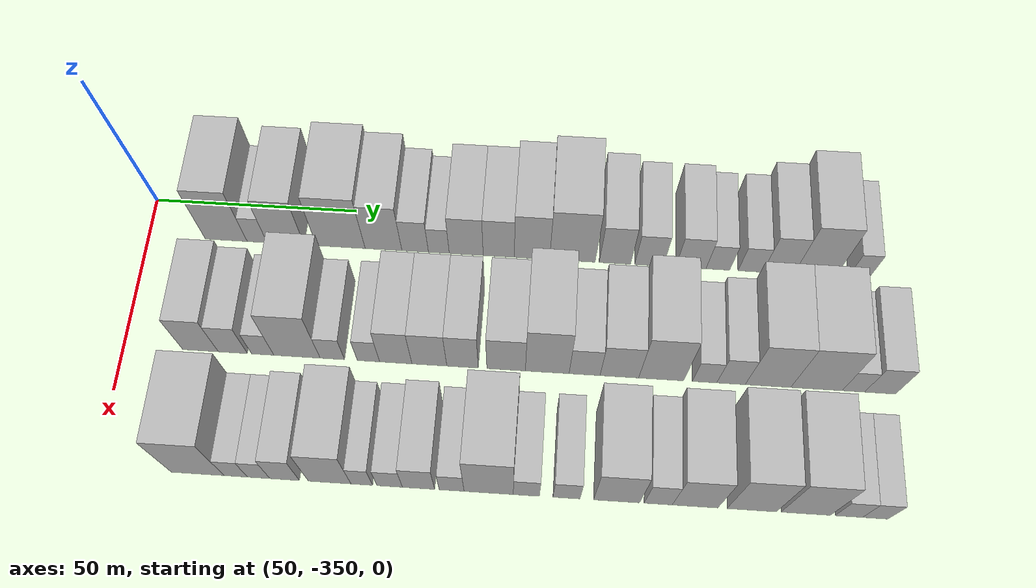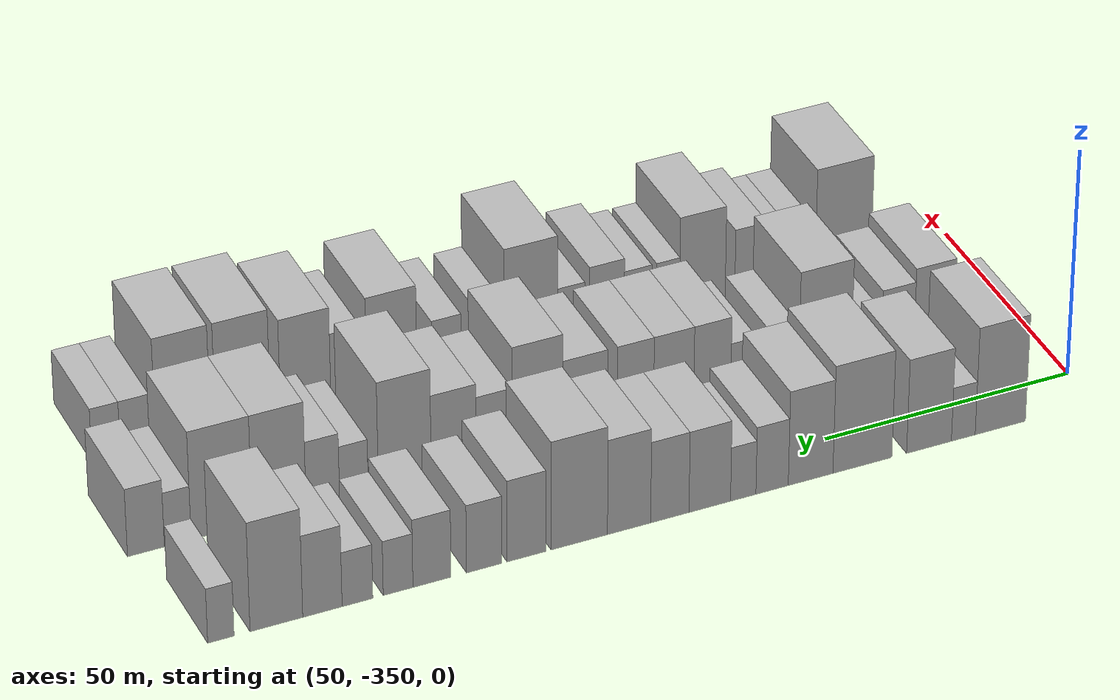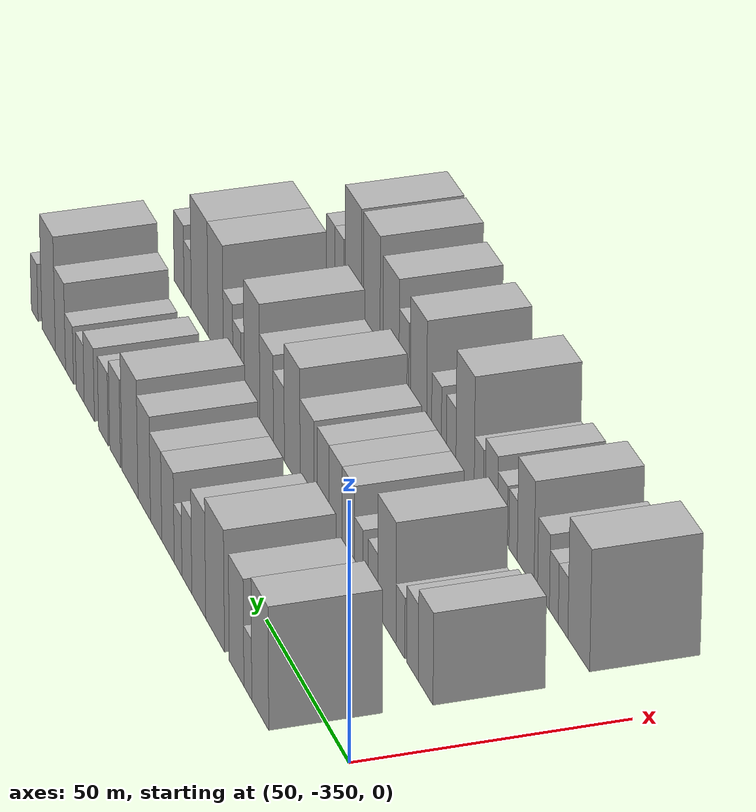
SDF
<sdf version="1.6">
 <world name="default">
  <model name="building_1">
   <static>1</static>
   <pose>50.0000 -330.8195 0 0.000000 0.000000 0.000000</pose>
   <link name="link">
    <pose>0 0 12.00 0 0 0</pose>
    <collision name="collision"><geometry><box><size>20.0000 10.3610 24.0000</size></box></geometry></collision>
    <visual name="visual">
     <cast_shadows>0</cast_shadows>
     <geometry><box><size>20.0000 10.3610 24.0000</size></box></geometry>
     <material>
      <script>
       <uri>model://HANNAS_wall/materials/scripts</uri>
       <uri>model://HANNAS_wall/materials/textures</uri>
       <name>vrc/HANNAS_wall</name>
      </script>
     </material>
    </visual>
   </link>
  </model>
  <model name="building_2">
   <static>1</static>
   <pose>50.0000 -323.1947 0 0.000000 0.000000 0.000000</pose>
   <link name="link">
    <pose>0 0 6.00 0 0 0</pose>
    <collision name="collision"><geometry><box><size>20.0000 4.8885 12.0000</size></box></geometry></collision>
    <visual name="visual">
     <cast_shadows>0</cast_shadows>
     <geometry><box><size>20.0000 4.8885 12.0000</size></box></geometry>
     <material>
      <script>
       <uri>model://HANNAS_wall/materials/scripts</uri>
       <uri>model://HANNAS_wall/materials/textures</uri>
       <name>vrc/HANNAS_wall</name>
      </script>
     </material>
    </visual>
   </link>
  </model>
  <model name="building_3">
   <static>1</static>
   <pose>50.0000 -316.1677 0 0.000000 0.000000 0.000000</pose>
   <link name="link">
    <pose>0 0 10.50 0 0 0</pose>
    <collision name="collision"><geometry><box><size>20.0000 9.1656 21.0000</size></box></geometry></collision>
    <visual name="visual">
     <cast_shadows>0</cast_shadows>
     <geometry><box><size>20.0000 9.1656 21.0000</size></box></geometry>
     <material>
      <script>
       <uri>model://HANNAS_wall/materials/scripts</uri>
       <uri>model://HANNAS_wall/materials/textures</uri>
       <name>vrc/HANNAS_wall</name>
      </script>
     </material>
    </visual>
   </link>
  </model>
  <model name="building_4">
   <static>1</static>
   <pose>50.0000 -302.6005 0 0.000000 0.000000 0.000000</pose>
   <link name="link">
    <pose>0 0 12.00 0 0 0</pose>
    <collision name="collision"><geometry><box><size>20.0000 11.9687 24.0000</size></box></geometry></collision>
    <visual name="visual">
     <cast_shadows>0</cast_shadows>
     <geometry><box><size>20.0000 11.9687 24.0000</size></box></geometry>
     <material>
      <script>
       <uri>model://HANNAS_wall/materials/scripts</uri>
       <uri>model://HANNAS_wall/materials/textures</uri>
       <name>vrc/HANNAS_wall</name>
      </script>
     </material>
    </visual>
   </link>
  </model>
  <model name="building_5">
   <static>1</static>
   <pose>50.0000 -292.1116 0 0.000000 0.000000 0.000000</pose>
   <link name="link">
    <pose>0 0 10.50 0 0 0</pose>
    <collision name="collision"><geometry><box><size>20.0000 9.0091 21.0000</size></box></geometry></collision>
    <visual name="visual">
     <cast_shadows>0</cast_shadows>
     <geometry><box><size>20.0000 9.0091 21.0000</size></box></geometry>
     <material>
      <script>
       <uri>model://HANNAS_wall/materials/scripts</uri>
       <uri>model://HANNAS_wall/materials/textures</uri>
       <name>vrc/HANNAS_wall</name>
      </script>
     </material>
    </visual>
   </link>
  </model>
  <model name="building_6">
   <static>1</static>
   <pose>50.0000 -284.3590 0 0.000000 0.000000 0.000000</pose>
   <link name="link">
    <pose>0 0 7.50 0 0 0</pose>
    <collision name="collision"><geometry><box><size>20.0000 6.4960 15.0000</size></box></geometry></collision>
    <visual name="visual">
     <cast_shadows>0</cast_shadows>
     <geometry><box><size>20.0000 6.4960 15.0000</size></box></geometry>
     <material>
      <script>
       <uri>model://HANNAS_wall/materials/scripts</uri>
       <uri>model://HANNAS_wall/materials/textures</uri>
       <name>vrc/HANNAS_wall</name>
      </script>
     </material>
    </visual>
   </link>
  </model>
  <model name="building_7">
   <static>1</static>
   <pose>50.0000 -278.5731 0 0.000000 0.000000 0.000000</pose>
   <link name="link">
    <pose>0 0 6.00 0 0 0</pose>
    <collision name="collision"><geometry><box><size>20.0000 5.0758 12.0000</size></box></geometry></collision>
    <visual name="visual">
     <cast_shadows>0</cast_shadows>
     <geometry><box><size>20.0000 5.0758 12.0000</size></box></geometry>
     <material>
      <script>
       <uri>model://HANNAS_wall/materials/scripts</uri>
       <uri>model://HANNAS_wall/materials/textures</uri>
       <name>vrc/HANNAS_wall</name>
      </script>
     </material>
    </visual>
   </link>
  </model>
  <model name="building_8">
   <static>1</static>
   <pose>50.0000 -271.8936 0 0.000000 0.000000 0.000000</pose>
   <link name="link">
    <pose>0 0 9.00 0 0 0</pose>
    <collision name="collision"><geometry><box><size>20.0000 8.2833 18.0000</size></box></geometry></collision>
    <visual name="visual">
     <cast_shadows>0</cast_shadows>
     <geometry><box><size>20.0000 8.2833 18.0000</size></box></geometry>
     <material>
      <script>
       <uri>model://HANNAS_wall/materials/scripts</uri>
       <uri>model://HANNAS_wall/materials/textures</uri>
       <name>vrc/HANNAS_wall</name>
      </script>
     </material>
    </visual>
   </link>
  </model>
  <model name="building_9">
   <static>1</static>
   <pose>50.0000 -263.9527 0 0.000000 0.000000 0.000000</pose>
   <link name="link">
    <pose>0 0 9.00 0 0 0</pose>
    <collision name="collision"><geometry><box><size>20.0000 7.5986 18.0000</size></box></geometry></collision>
    <visual name="visual">
     <cast_shadows>0</cast_shadows>
     <geometry><box><size>20.0000 7.5986 18.0000</size></box></geometry>
     <material>
      <script>
       <uri>model://HANNAS_wall/materials/scripts</uri>
       <uri>model://HANNAS_wall/materials/textures</uri>
       <name>vrc/HANNAS_wall</name>
      </script>
     </material>
    </visual>
   </link>
  </model>
  <model name="building_10">
   <static>1</static>
   <pose>50.0000 -255.8850 0 0.000000 0.000000 0.000000</pose>
   <link name="link">
    <pose>0 0 10.50 0 0 0</pose>
    <collision name="collision"><geometry><box><size>20.0000 8.5368 21.0000</size></box></geometry></collision>
    <visual name="visual">
     <cast_shadows>0</cast_shadows>
     <geometry><box><size>20.0000 8.5368 21.0000</size></box></geometry>
     <material>
      <script>
       <uri>model://HANNAS_wall/materials/scripts</uri>
       <uri>model://HANNAS_wall/materials/textures</uri>
       <name>vrc/HANNAS_wall</name>
      </script>
     </material>
    </visual>
   </link>
  </model>
  <model name="building_11">
   <static>1</static>
   <pose>50.0000 -246.0793 0 0.000000 0.000000 0.000000</pose>
   <link name="link">
    <pose>0 0 12.00 0 0 0</pose>
    <collision name="collision"><geometry><box><size>20.0000 11.0746 24.0000</size></box></geometry></collision>
    <visual name="visual">
     <cast_shadows>0</cast_shadows>
     <geometry><box><size>20.0000 11.0746 24.0000</size></box></geometry>
     <material>
      <script>
       <uri>model://HANNAS_wall/materials/scripts</uri>
       <uri>model://HANNAS_wall/materials/textures</uri>
       <name>vrc/HANNAS_wall</name>
      </script>
     </material>
    </visual>
   </link>
  </model>
  <model name="building_12">
   <static>1</static>
   <pose>50.0000 -235.7469 0 0.000000 0.000000 0.000000</pose>
   <link name="link">
    <pose>0 0 9.00 0 0 0</pose>
    <collision name="collision"><geometry><box><size>20.0000 7.5902 18.0000</size></box></geometry></collision>
    <visual name="visual">
     <cast_shadows>0</cast_shadows>
     <geometry><box><size>20.0000 7.5902 18.0000</size></box></geometry>
     <material>
      <script>
       <uri>model://HANNAS_wall/materials/scripts</uri>
       <uri>model://HANNAS_wall/materials/textures</uri>
       <name>vrc/HANNAS_wall</name>
      </script>
     </material>
    </visual>
   </link>
  </model>
  <model name="building_13">
   <static>1</static>
   <pose>50.0000 -227.5079 0 0.000000 0.000000 0.000000</pose>
   <link name="link">
    <pose>0 0 7.50 0 0 0</pose>
    <collision name="collision"><geometry><box><size>20.0000 6.8878 15.0000</size></box></geometry></collision>
    <visual name="visual">
     <cast_shadows>0</cast_shadows>
     <geometry><box><size>20.0000 6.8878 15.0000</size></box></geometry>
     <material>
      <script>
       <uri>model://HANNAS_wall/materials/scripts</uri>
       <uri>model://HANNAS_wall/materials/textures</uri>
       <name>vrc/HANNAS_wall</name>
      </script>
     </material>
    </visual>
   </link>
  </model>
  <model name="building_14">
   <static>1</static>
   <pose>50.0000 -217.3866 0 0.000000 0.000000 0.000000</pose>
   <link name="link">
    <pose>0 0 7.50 0 0 0</pose>
    <collision name="collision"><geometry><box><size>20.0000 7.3548 15.0000</size></box></geometry></collision>
    <visual name="visual">
     <cast_shadows>0</cast_shadows>
     <geometry><box><size>20.0000 7.3548 15.0000</size></box></geometry>
     <material>
      <script>
       <uri>model://HANNAS_wall/materials/scripts</uri>
       <uri>model://HANNAS_wall/materials/textures</uri>
       <name>vrc/HANNAS_wall</name>
      </script>
     </material>
    </visual>
   </link>
  </model>
  <model name="building_15">
   <static>1</static>
   <pose>50.0000 -210.8543 0 0.000000 0.000000 0.000000</pose>
   <link name="link">
    <pose>0 0 6.00 0 0 0</pose>
    <collision name="collision"><geometry><box><size>20.0000 5.7099 12.0000</size></box></geometry></collision>
    <visual name="visual">
     <cast_shadows>0</cast_shadows>
     <geometry><box><size>20.0000 5.7099 12.0000</size></box></geometry>
     <material>
      <script>
       <uri>model://HANNAS_wall/materials/scripts</uri>
       <uri>model://HANNAS_wall/materials/textures</uri>
       <name>vrc/HANNAS_wall</name>
      </script>
     </material>
    </visual>
   </link>
  </model>
  <model name="building_16">
   <static>1</static>
   <pose>50.0000 -203.0575 0 0.000000 0.000000 0.000000</pose>
   <link name="link">
    <pose>0 0 6.00 0 0 0</pose>
    <collision name="collision"><geometry><box><size>20.0000 5.8836 12.0000</size></box></geometry></collision>
    <visual name="visual">
     <cast_shadows>0</cast_shadows>
     <geometry><box><size>20.0000 5.8836 12.0000</size></box></geometry>
     <material>
      <script>
       <uri>model://HANNAS_wall/materials/scripts</uri>
       <uri>model://HANNAS_wall/materials/textures</uri>
       <name>vrc/HANNAS_wall</name>
      </script>
     </material>
    </visual>
   </link>
  </model>
  <model name="building_17">
   <static>1</static>
   <pose>50.0000 -196.3633 0 0.000000 0.000000 0.000000</pose>
   <link name="link">
    <pose>0 0 9.00 0 0 0</pose>
    <collision name="collision"><geometry><box><size>20.0000 7.5048 18.0000</size></box></geometry></collision>
    <visual name="visual">
     <cast_shadows>0</cast_shadows>
     <geometry><box><size>20.0000 7.5048 18.0000</size></box></geometry>
     <material>
      <script>
       <uri>model://HANNAS_wall/materials/scripts</uri>
       <uri>model://HANNAS_wall/materials/textures</uri>
       <name>vrc/HANNAS_wall</name>
      </script>
     </material>
    </visual>
   </link>
  </model>
  <model name="building_18">
   <static>1</static>
   <pose>50.0000 -187.6066 0 0.000000 0.000000 0.000000</pose>
   <link name="link">
    <pose>0 0 12.00 0 0 0</pose>
    <collision name="collision"><geometry><box><size>20.0000 10.0087 24.0000</size></box></geometry></collision>
    <visual name="visual">
     <cast_shadows>0</cast_shadows>
     <geometry><box><size>20.0000 10.0087 24.0000</size></box></geometry>
     <material>
      <script>
       <uri>model://HANNAS_wall/materials/scripts</uri>
       <uri>model://HANNAS_wall/materials/textures</uri>
       <name>vrc/HANNAS_wall</name>
      </script>
     </material>
    </visual>
   </link>
  </model>
  <model name="building_19">
   <static>1</static>
   <pose>50.0000 -177.1057 0 0.000000 0.000000 0.000000</pose>
   <link name="link">
    <pose>0 0 6.00 0 0 0</pose>
    <collision name="collision"><geometry><box><size>20.0000 4.9930 12.0000</size></box></geometry></collision>
    <visual name="visual">
     <cast_shadows>0</cast_shadows>
     <geometry><box><size>20.0000 4.9930 12.0000</size></box></geometry>
     <material>
      <script>
       <uri>model://HANNAS_wall/materials/scripts</uri>
       <uri>model://HANNAS_wall/materials/textures</uri>
       <name>vrc/HANNAS_wall</name>
      </script>
     </material>
    </visual>
   </link>
  </model>
  <model name="building_84">
   <static>1</static>
   <pose>79.0000 -331.7962 0 0.000000 0.000000 0.000000</pose>
   <link name="link">
    <pose>0 0 9.00 0 0 0</pose>
    <collision name="collision"><geometry><box><size>20.0000 8.4075 18.0000</size></box></geometry></collision>
    <visual name="visual">
     <cast_shadows>0</cast_shadows>
     <geometry><box><size>20.0000 8.4075 18.0000</size></box></geometry>
     <material>
      <script>
       <uri>model://HANNAS_wall/materials/scripts</uri>
       <uri>model://HANNAS_wall/materials/textures</uri>
       <name>vrc/HANNAS_wall</name>
      </script>
     </material>
    </visual>
   </link>
  </model>
  <model name="building_85">
   <static>1</static>
   <pose>79.0000 -324.1735 0 0.000000 0.000000 0.000000</pose>
   <link name="link">
    <pose>0 0 7.50 0 0 0</pose>
    <collision name="collision"><geometry><box><size>20.0000 6.8380 15.0000</size></box></geometry></collision>
    <visual name="visual">
     <cast_shadows>0</cast_shadows>
     <geometry><box><size>20.0000 6.8380 15.0000</size></box></geometry>
     <material>
      <script>
       <uri>model://HANNAS_wall/materials/scripts</uri>
       <uri>model://HANNAS_wall/materials/textures</uri>
       <name>vrc/HANNAS_wall</name>
      </script>
     </material>
    </visual>
   </link>
  </model>
  <model name="building_86">
   <static>1</static>
   <pose>79.0000 -317.1399 0 0.000000 0.000000 0.000000</pose>
   <link name="link">
    <pose>0 0 6.00 0 0 0</pose>
    <collision name="collision"><geometry><box><size>20.0000 5.2292 12.0000</size></box></geometry></collision>
    <visual name="visual">
     <cast_shadows>0</cast_shadows>
     <geometry><box><size>20.0000 5.2292 12.0000</size></box></geometry>
     <material>
      <script>
       <uri>model://HANNAS_wall/materials/scripts</uri>
       <uri>model://HANNAS_wall/materials/textures</uri>
       <name>vrc/HANNAS_wall</name>
      </script>
     </material>
    </visual>
   </link>
  </model>
  <model name="building_87">
   <static>1</static>
   <pose>79.0000 -309.0872 0 0.000000 0.000000 0.000000</pose>
   <link name="link">
    <pose>0 0 12.00 0 0 0</pose>
    <collision name="collision"><geometry><box><size>20.0000 10.8761 24.0000</size></box></geometry></collision>
    <visual name="visual">
     <cast_shadows>0</cast_shadows>
     <geometry><box><size>20.0000 10.8761 24.0000</size></box></geometry>
     <material>
      <script>
       <uri>model://HANNAS_wall/materials/scripts</uri>
       <uri>model://HANNAS_wall/materials/textures</uri>
       <name>vrc/HANNAS_wall</name>
      </script>
     </material>
    </visual>
   </link>
  </model>
  <model name="building_88">
   <static>1</static>
   <pose>79.0000 -300.7946 0 0.000000 0.000000 0.000000</pose>
   <link name="link">
    <pose>0 0 6.00 0 0 0</pose>
    <collision name="collision"><geometry><box><size>20.0000 5.7091 12.0000</size></box></geometry></collision>
    <visual name="visual">
     <cast_shadows>0</cast_shadows>
     <geometry><box><size>20.0000 5.7091 12.0000</size></box></geometry>
     <material>
      <script>
       <uri>model://HANNAS_wall/materials/scripts</uri>
       <uri>model://HANNAS_wall/materials/textures</uri>
       <name>vrc/HANNAS_wall</name>
      </script>
     </material>
    </visual>
   </link>
  </model>
  <model name="building_89">
   <static>1</static>
   <pose>79.0000 -292.3350 0 0.000000 0.000000 0.000000</pose>
   <link name="link">
    <pose>0 0 6.00 0 0 0</pose>
    <collision name="collision"><geometry><box><size>20.0000 5.2103 12.0000</size></box></geometry></collision>
    <visual name="visual">
     <cast_shadows>0</cast_shadows>
     <geometry><box><size>20.0000 5.2103 12.0000</size></box></geometry>
     <material>
      <script>
       <uri>model://HANNAS_wall/materials/scripts</uri>
       <uri>model://HANNAS_wall/materials/textures</uri>
       <name>vrc/HANNAS_wall</name>
      </script>
     </material>
    </visual>
   </link>
  </model>
  <model name="building_90">
   <static>1</static>
   <pose>79.0000 -285.9596 0 0.000000 0.000000 0.000000</pose>
   <link name="link">
    <pose>0 0 9.00 0 0 0</pose>
    <collision name="collision"><geometry><box><size>20.0000 7.5405 18.0000</size></box></geometry></collision>
    <visual name="visual">
     <cast_shadows>0</cast_shadows>
     <geometry><box><size>20.0000 7.5405 18.0000</size></box></geometry>
     <material>
      <script>
       <uri>model://HANNAS_wall/materials/scripts</uri>
       <uri>model://HANNAS_wall/materials/textures</uri>
       <name>vrc/HANNAS_wall</name>
      </script>
     </material>
    </visual>
   </link>
  </model>
  <model name="building_91">
   <static>1</static>
   <pose>79.0000 -278.1185 0 0.000000 0.000000 0.000000</pose>
   <link name="link">
    <pose>0 0 9.00 0 0 0</pose>
    <collision name="collision"><geometry><box><size>20.0000 8.1417 18.0000</size></box></geometry></collision>
    <visual name="visual">
     <cast_shadows>0</cast_shadows>
     <geometry><box><size>20.0000 8.1417 18.0000</size></box></geometry>
     <material>
      <script>
       <uri>model://HANNAS_wall/materials/scripts</uri>
       <uri>model://HANNAS_wall/materials/textures</uri>
       <name>vrc/HANNAS_wall</name>
      </script>
     </material>
    </visual>
   </link>
  </model>
  <model name="building_92">
   <static>1</static>
   <pose>79.0000 -270.3843 0 0.000000 0.000000 0.000000</pose>
   <link name="link">
    <pose>0 0 9.00 0 0 0</pose>
    <collision name="collision"><geometry><box><size>20.0000 7.3266 18.0000</size></box></geometry></collision>
    <visual name="visual">
     <cast_shadows>0</cast_shadows>
     <geometry><box><size>20.0000 7.3266 18.0000</size></box></geometry>
     <material>
      <script>
       <uri>model://HANNAS_wall/materials/scripts</uri>
       <uri>model://HANNAS_wall/materials/textures</uri>
       <name>vrc/HANNAS_wall</name>
      </script>
     </material>
    </visual>
   </link>
  </model>
  <model name="building_93">
   <static>1</static>
   <pose>79.0000 -260.2512 0 0.000000 0.000000 0.000000</pose>
   <link name="link">
    <pose>0 0 9.00 0 0 0</pose>
    <collision name="collision"><geometry><box><size>20.0000 8.9396 18.0000</size></box></geometry></collision>
    <visual name="visual">
     <cast_shadows>0</cast_shadows>
     <geometry><box><size>20.0000 8.9396 18.0000</size></box></geometry>
     <material>
      <script>
       <uri>model://HANNAS_wall/materials/scripts</uri>
       <uri>model://HANNAS_wall/materials/textures</uri>
       <name>vrc/HANNAS_wall</name>
      </script>
     </material>
    </visual>
   </link>
  </model>
  <model name="building_94">
   <static>1</static>
   <pose>79.0000 -250.7184 0 0.000000 0.000000 0.000000</pose>
   <link name="link">
    <pose>0 0 12.00 0 0 0</pose>
    <collision name="collision"><geometry><box><size>20.0000 10.1260 24.0000</size></box></geometry></collision>
    <visual name="visual">
     <cast_shadows>0</cast_shadows>
     <geometry><box><size>20.0000 10.1260 24.0000</size></box></geometry>
     <material>
      <script>
       <uri>model://HANNAS_wall/materials/scripts</uri>
       <uri>model://HANNAS_wall/materials/textures</uri>
       <name>vrc/HANNAS_wall</name>
      </script>
     </material>
    </visual>
   </link>
  </model>
  <model name="building_95">
   <static>1</static>
   <pose>79.0000 -242.0829 0 0.000000 0.000000 0.000000</pose>
   <link name="link">
    <pose>0 0 7.50 0 0 0</pose>
    <collision name="collision"><geometry><box><size>20.0000 7.1449 15.0000</size></box></geometry></collision>
    <visual name="visual">
     <cast_shadows>0</cast_shadows>
     <geometry><box><size>20.0000 7.1449 15.0000</size></box></geometry>
     <material>
      <script>
       <uri>model://HANNAS_wall/materials/scripts</uri>
       <uri>model://HANNAS_wall/materials/textures</uri>
       <name>vrc/HANNAS_wall</name>
      </script>
     </material>
    </visual>
   </link>
  </model>
  <model name="building_96">
   <static>1</static>
   <pose>79.0000 -234.0465 0 0.000000 0.000000 0.000000</pose>
   <link name="link">
    <pose>0 0 9.00 0 0 0</pose>
    <collision name="collision"><geometry><box><size>20.0000 8.9280 18.0000</size></box></geometry></collision>
    <visual name="visual">
     <cast_shadows>0</cast_shadows>
     <geometry><box><size>20.0000 8.9280 18.0000</size></box></geometry>
     <material>
      <script>
       <uri>model://HANNAS_wall/materials/scripts</uri>
       <uri>model://HANNAS_wall/materials/textures</uri>
       <name>vrc/HANNAS_wall</name>
      </script>
     </material>
    </visual>
   </link>
  </model>
  <model name="building_97">
   <static>1</static>
   <pose>79.0000 -224.3839 0 0.000000 0.000000 0.000000</pose>
   <link name="link">
    <pose>0 0 12.00 0 0 0</pose>
    <collision name="collision"><geometry><box><size>20.0000 10.3971 24.0000</size></box></geometry></collision>
    <visual name="visual">
     <cast_shadows>0</cast_shadows>
     <geometry><box><size>20.0000 10.3971 24.0000</size></box></geometry>
     <material>
      <script>
       <uri>model://HANNAS_wall/materials/scripts</uri>
       <uri>model://HANNAS_wall/materials/textures</uri>
       <name>vrc/HANNAS_wall</name>
      </script>
     </material>
    </visual>
   </link>
  </model>
  <model name="building_98">
   <static>1</static>
   <pose>79.0000 -214.3816 0 0.000000 0.000000 0.000000</pose>
   <link name="link">
    <pose>0 0 6.00 0 0 0</pose>
    <collision name="collision"><geometry><box><size>20.0000 5.6074 12.0000</size></box></geometry></collision>
    <visual name="visual">
     <cast_shadows>0</cast_shadows>
     <geometry><box><size>20.0000 5.6074 12.0000</size></box></geometry>
     <material>
      <script>
       <uri>model://HANNAS_wall/materials/scripts</uri>
       <uri>model://HANNAS_wall/materials/textures</uri>
       <name>vrc/HANNAS_wall</name>
      </script>
     </material>
    </visual>
   </link>
  </model>
  <model name="building_99">
   <static>1</static>
   <pose>79.0000 -208.3079 0 0.000000 0.000000 0.000000</pose>
   <link name="link">
    <pose>0 0 7.50 0 0 0</pose>
    <collision name="collision"><geometry><box><size>20.0000 6.5401 15.0000</size></box></geometry></collision>
    <visual name="visual">
     <cast_shadows>0</cast_shadows>
     <geometry><box><size>20.0000 6.5401 15.0000</size></box></geometry>
     <material>
      <script>
       <uri>model://HANNAS_wall/materials/scripts</uri>
       <uri>model://HANNAS_wall/materials/textures</uri>
       <name>vrc/HANNAS_wall</name>
      </script>
     </material>
    </visual>
   </link>
  </model>
  <model name="building_100">
   <static>1</static>
   <pose>79.0000 -199.8088 0 0.000000 0.000000 0.000000</pose>
   <link name="link">
    <pose>0 0 12.00 0 0 0</pose>
    <collision name="collision"><geometry><box><size>20.0000 10.4580 24.0000</size></box></geometry></collision>
    <visual name="visual">
     <cast_shadows>0</cast_shadows>
     <geometry><box><size>20.0000 10.4580 24.0000</size></box></geometry>
     <material>
      <script>
       <uri>model://HANNAS_wall/materials/scripts</uri>
       <uri>model://HANNAS_wall/materials/textures</uri>
       <name>vrc/HANNAS_wall</name>
      </script>
     </material>
    </visual>
   </link>
  </model>
  <model name="building_101">
   <static>1</static>
   <pose>79.0000 -188.6855 0 0.000000 0.000000 0.000000</pose>
   <link name="link">
    <pose>0 0 12.00 0 0 0</pose>
    <collision name="collision"><geometry><box><size>20.0000 11.7885 24.0000</size></box></geometry></collision>
    <visual name="visual">
     <cast_shadows>0</cast_shadows>
     <geometry><box><size>20.0000 11.7885 24.0000</size></box></geometry>
     <material>
      <script>
       <uri>model://HANNAS_wall/materials/scripts</uri>
       <uri>model://HANNAS_wall/materials/textures</uri>
       <name>vrc/HANNAS_wall</name>
      </script>
     </material>
    </visual>
   </link>
  </model>
  <model name="building_102">
   <static>1</static>
   <pose>79.0000 -180.2186 0 0.000000 0.000000 0.000000</pose>
   <link name="link">
    <pose>0 0 6.00 0 0 0</pose>
    <collision name="collision"><geometry><box><size>20.0000 5.1453 12.0000</size></box></geometry></collision>
    <visual name="visual">
     <cast_shadows>0</cast_shadows>
     <geometry><box><size>20.0000 5.1453 12.0000</size></box></geometry>
     <material>
      <script>
       <uri>model://HANNAS_wall/materials/scripts</uri>
       <uri>model://HANNAS_wall/materials/textures</uri>
       <name>vrc/HANNAS_wall</name>
      </script>
     </material>
    </visual>
   </link>
  </model>
  <model name="building_103">
   <static>1</static>
   <pose>79.0000 -174.1212 0 0.000000 0.000000 0.000000</pose>
   <link name="link">
    <pose>0 0 7.50 0 0 0</pose>
    <collision name="collision"><geometry><box><size>20.0000 7.0495 15.0000</size></box></geometry></collision>
    <visual name="visual">
     <cast_shadows>0</cast_shadows>
     <geometry><box><size>20.0000 7.0495 15.0000</size></box></geometry>
     <material>
      <script>
       <uri>model://HANNAS_wall/materials/scripts</uri>
       <uri>model://HANNAS_wall/materials/textures</uri>
       <name>vrc/HANNAS_wall</name>
      </script>
     </material>
    </visual>
   </link>
  </model>
  <model name="building_156">
   <static>1</static>
   <pose>108.0000 -327.0544 0 0.000000 0.000000 0.000000</pose>
   <link name="link">
    <pose>0 0 12.00 0 0 0</pose>
    <collision name="collision"><geometry><box><size>20.0000 11.8912 24.0000</size></box></geometry></collision>
    <visual name="visual">
     <cast_shadows>0</cast_shadows>
     <geometry><box><size>20.0000 11.8912 24.0000</size></box></geometry>
     <material>
      <script>
       <uri>model://HANNAS_wall/materials/scripts</uri>
       <uri>model://HANNAS_wall/materials/textures</uri>
       <name>vrc/HANNAS_wall</name>
      </script>
     </material>
    </visual>
   </link>
  </model>
  <model name="building_157">
   <static>1</static>
   <pose>108.0000 -318.4703 0 0.000000 0.000000 0.000000</pose>
   <link name="link">
    <pose>0 0 6.00 0 0 0</pose>
    <collision name="collision"><geometry><box><size>20.0000 5.2769 12.0000</size></box></geometry></collision>
    <visual name="visual">
     <cast_shadows>0</cast_shadows>
     <geometry><box><size>20.0000 5.2769 12.0000</size></box></geometry>
     <material>
      <script>
       <uri>model://HANNAS_wall/materials/scripts</uri>
       <uri>model://HANNAS_wall/materials/textures</uri>
       <name>vrc/HANNAS_wall</name>
      </script>
     </material>
    </visual>
   </link>
  </model>
  <model name="building_158">
   <static>1</static>
   <pose>108.0000 -313.3447 0 0.000000 0.000000 0.000000</pose>
   <link name="link">
    <pose>0 0 6.00 0 0 0</pose>
    <collision name="collision"><geometry><box><size>20.0000 4.9742 12.0000</size></box></geometry></collision>
    <visual name="visual">
     <cast_shadows>0</cast_shadows>
     <geometry><box><size>20.0000 4.9742 12.0000</size></box></geometry>
     <material>
      <script>
       <uri>model://HANNAS_wall/materials/scripts</uri>
       <uri>model://HANNAS_wall/materials/textures</uri>
       <name>vrc/HANNAS_wall</name>
      </script>
     </material>
    </visual>
   </link>
  </model>
  <model name="building_159">
   <static>1</static>
   <pose>108.0000 -307.5607 0 0.000000 0.000000 0.000000</pose>
   <link name="link">
    <pose>0 0 7.50 0 0 0</pose>
    <collision name="collision"><geometry><box><size>20.0000 6.5938 15.0000</size></box></geometry></collision>
    <visual name="visual">
     <cast_shadows>0</cast_shadows>
     <geometry><box><size>20.0000 6.5938 15.0000</size></box></geometry>
     <material>
      <script>
       <uri>model://HANNAS_wall/materials/scripts</uri>
       <uri>model://HANNAS_wall/materials/textures</uri>
       <name>vrc/HANNAS_wall</name>
      </script>
     </material>
    </visual>
   </link>
  </model>
  <model name="building_160">
   <static>1</static>
   <pose>108.0000 -297.5077 0 0.000000 0.000000 0.000000</pose>
   <link name="link">
    <pose>0 0 10.50 0 0 0</pose>
    <collision name="collision"><geometry><box><size>20.0000 9.5123 21.0000</size></box></geometry></collision>
    <visual name="visual">
     <cast_shadows>0</cast_shadows>
     <geometry><box><size>20.0000 9.5123 21.0000</size></box></geometry>
     <material>
      <script>
       <uri>model://HANNAS_wall/materials/scripts</uri>
       <uri>model://HANNAS_wall/materials/textures</uri>
       <name>vrc/HANNAS_wall</name>
      </script>
     </material>
    </visual>
   </link>
  </model>
  <model name="building_161">
   <static>1</static>
   <pose>108.0000 -290.3457 0 0.000000 0.000000 0.000000</pose>
   <link name="link">
    <pose>0 0 6.00 0 0 0</pose>
    <collision name="collision"><geometry><box><size>20.0000 4.8118 12.0000</size></box></geometry></collision>
    <visual name="visual">
     <cast_shadows>0</cast_shadows>
     <geometry><box><size>20.0000 4.8118 12.0000</size></box></geometry>
     <material>
      <script>
       <uri>model://HANNAS_wall/materials/scripts</uri>
       <uri>model://HANNAS_wall/materials/textures</uri>
       <name>vrc/HANNAS_wall</name>
      </script>
     </material>
    </visual>
   </link>
  </model>
  <model name="building_162">
   <static>1</static>
   <pose>108.0000 -284.1235 0 0.000000 0.000000 0.000000</pose>
   <link name="link">
    <pose>0 0 6.00 0 0 0</pose>
    <collision name="collision"><geometry><box><size>20.0000 5.6326 12.0000</size></box></geometry></collision>
    <visual name="visual">
     <cast_shadows>0</cast_shadows>
     <geometry><box><size>20.0000 5.6326 12.0000</size></box></geometry>
     <material>
      <script>
       <uri>model://HANNAS_wall/materials/scripts</uri>
       <uri>model://HANNAS_wall/materials/textures</uri>
       <name>vrc/HANNAS_wall</name>
      </script>
     </material>
    </visual>
   </link>
  </model>
  <model name="building_163">
   <static>1</static>
   <pose>108.0000 -277.7268 0 0.000000 0.000000 0.000000</pose>
   <link name="link">
    <pose>0 0 7.50 0 0 0</pose>
    <collision name="collision"><geometry><box><size>20.0000 7.1608 15.0000</size></box></geometry></collision>
    <visual name="visual">
     <cast_shadows>0</cast_shadows>
     <geometry><box><size>20.0000 7.1608 15.0000</size></box></geometry>
     <material>
      <script>
       <uri>model://HANNAS_wall/materials/scripts</uri>
       <uri>model://HANNAS_wall/materials/textures</uri>
       <name>vrc/HANNAS_wall</name>
      </script>
     </material>
    </visual>
   </link>
  </model>
  <model name="building_164">
   <static>1</static>
   <pose>108.0000 -270.3898 0 0.000000 0.000000 0.000000</pose>
   <link name="link">
    <pose>0 0 6.00 0 0 0</pose>
    <collision name="collision"><geometry><box><size>20.0000 5.5132 12.0000</size></box></geometry></collision>
    <visual name="visual">
     <cast_shadows>0</cast_shadows>
     <geometry><box><size>20.0000 5.5132 12.0000</size></box></geometry>
     <material>
      <script>
       <uri>model://HANNAS_wall/materials/scripts</uri>
       <uri>model://HANNAS_wall/materials/textures</uri>
       <name>vrc/HANNAS_wall</name>
      </script>
     </material>
    </visual>
   </link>
  </model>
  <model name="building_165">
   <static>1</static>
   <pose>108.0000 -262.1993 0 0.000000 0.000000 0.000000</pose>
   <link name="link">
    <pose>0 0 12.00 0 0 0</pose>
    <collision name="collision"><geometry><box><size>20.0000 10.8677 24.0000</size></box></geometry></collision>
    <visual name="visual">
     <cast_shadows>0</cast_shadows>
     <geometry><box><size>20.0000 10.8677 24.0000</size></box></geometry>
     <material>
      <script>
       <uri>model://HANNAS_wall/materials/scripts</uri>
       <uri>model://HANNAS_wall/materials/textures</uri>
       <name>vrc/HANNAS_wall</name>
      </script>
     </material>
    </visual>
   </link>
  </model>
  <model name="building_166">
   <static>1</static>
   <pose>108.0000 -253.8809 0 0.000000 0.000000 0.000000</pose>
   <link name="link">
    <pose>0 0 6.00 0 0 0</pose>
    <collision name="collision"><geometry><box><size>20.0000 5.7690 12.0000</size></box></geometry></collision>
    <visual name="visual">
     <cast_shadows>0</cast_shadows>
     <geometry><box><size>20.0000 5.7690 12.0000</size></box></geometry>
     <material>
      <script>
       <uri>model://HANNAS_wall/materials/scripts</uri>
       <uri>model://HANNAS_wall/materials/textures</uri>
       <name>vrc/HANNAS_wall</name>
      </script>
     </material>
    </visual>
   </link>
  </model>
  <model name="building_167">
   <static>1</static>
   <pose>108.0000 -245.0255 0 0.000000 0.000000 0.000000</pose>
   <link name="link">
    <pose>0 0 6.00 0 0 0</pose>
    <collision name="collision"><geometry><box><size>20.0000 5.9418 12.0000</size></box></geometry></collision>
    <visual name="visual">
     <cast_shadows>0</cast_shadows>
     <geometry><box><size>20.0000 5.9418 12.0000</size></box></geometry>
     <material>
      <script>
       <uri>model://HANNAS_wall/materials/scripts</uri>
       <uri>model://HANNAS_wall/materials/textures</uri>
       <name>vrc/HANNAS_wall</name>
      </script>
     </material>
    </visual>
   </link>
  </model>
  <model name="building_168">
   <static>1</static>
   <pose>108.0000 -233.9902 0 0.000000 0.000000 0.000000</pose>
   <link name="link">
    <pose>0 0 10.50 0 0 0</pose>
    <collision name="collision"><geometry><box><size>20.0000 10.1289 21.0000</size></box></geometry></collision>
    <visual name="visual">
     <cast_shadows>0</cast_shadows>
     <geometry><box><size>20.0000 10.1289 21.0000</size></box></geometry>
     <material>
      <script>
       <uri>model://HANNAS_wall/materials/scripts</uri>
       <uri>model://HANNAS_wall/materials/textures</uri>
       <name>vrc/HANNAS_wall</name>
      </script>
     </material>
    </visual>
   </link>
  </model>
  <model name="building_169">
   <static>1</static>
   <pose>108.0000 -224.8460 0 0.000000 0.000000 0.000000</pose>
   <link name="link">
    <pose>0 0 7.50 0 0 0</pose>
    <collision name="collision"><geometry><box><size>20.0000 6.1594 15.0000</size></box></geometry></collision>
    <visual name="visual">
     <cast_shadows>0</cast_shadows>
     <geometry><box><size>20.0000 6.1594 15.0000</size></box></geometry>
     <material>
      <script>
       <uri>model://HANNAS_wall/materials/scripts</uri>
       <uri>model://HANNAS_wall/materials/textures</uri>
       <name>vrc/HANNAS_wall</name>
      </script>
     </material>
    </visual>
   </link>
  </model>
  <model name="building_170">
   <static>1</static>
   <pose>108.0000 -216.7562 0 0.000000 0.000000 0.000000</pose>
   <link name="link">
    <pose>0 0 10.50 0 0 0</pose>
    <collision name="collision"><geometry><box><size>20.0000 10.0202 21.0000</size></box></geometry></collision>
    <visual name="visual">
     <cast_shadows>0</cast_shadows>
     <geometry><box><size>20.0000 10.0202 21.0000</size></box></geometry>
     <material>
      <script>
       <uri>model://HANNAS_wall/materials/scripts</uri>
       <uri>model://HANNAS_wall/materials/textures</uri>
       <name>vrc/HANNAS_wall</name>
      </script>
     </material>
    </visual>
   </link>
  </model>
  <model name="building_171">
   <static>1</static>
   <pose>108.0000 -204.3377 0 0.000000 0.000000 0.000000</pose>
   <link name="link">
    <pose>0 0 12.00 0 0 0</pose>
    <collision name="collision"><geometry><box><size>20.0000 10.8168 24.0000</size></box></geometry></collision>
    <visual name="visual">
     <cast_shadows>0</cast_shadows>
     <geometry><box><size>20.0000 10.8168 24.0000</size></box></geometry>
     <material>
      <script>
       <uri>model://HANNAS_wall/materials/scripts</uri>
       <uri>model://HANNAS_wall/materials/textures</uri>
       <name>vrc/HANNAS_wall</name>
      </script>
     </material>
    </visual>
   </link>
  </model>
  <model name="building_172">
   <static>1</static>
   <pose>108.0000 -192.5578 0 0.000000 0.000000 0.000000</pose>
   <link name="link">
    <pose>0 0 12.00 0 0 0</pose>
    <collision name="collision"><geometry><box><size>20.0000 10.7429 24.0000</size></box></geometry></collision>
    <visual name="visual">
     <cast_shadows>0</cast_shadows>
     <geometry><box><size>20.0000 10.7429 24.0000</size></box></geometry>
     <material>
      <script>
       <uri>model://HANNAS_wall/materials/scripts</uri>
       <uri>model://HANNAS_wall/materials/textures</uri>
       <name>vrc/HANNAS_wall</name>
      </script>
     </material>
    </visual>
   </link>
  </model>
  <model name="building_173">
   <static>1</static>
   <pose>108.0000 -183.2082 0 0.000000 0.000000 0.000000</pose>
   <link name="link">
    <pose>0 0 6.00 0 0 0</pose>
    <collision name="collision"><geometry><box><size>20.0000 5.9563 12.0000</size></box></geometry></collision>
    <visual name="visual">
     <cast_shadows>0</cast_shadows>
     <geometry><box><size>20.0000 5.9563 12.0000</size></box></geometry>
     <material>
      <script>
       <uri>model://HANNAS_wall/materials/scripts</uri>
       <uri>model://HANNAS_wall/materials/textures</uri>
       <name>vrc/HANNAS_wall</name>
      </script>
     </material>
    </visual>
   </link>
  </model>
  <model name="building_174">
   <static>1</static>
   <pose>108.0000 -177.4648 0 0.000000 0.000000 0.000000</pose>
   <link name="link">
    <pose>0 0 6.00 0 0 0</pose>
    <collision name="collision"><geometry><box><size>20.0000 5.5305 12.0000</size></box></geometry></collision>
    <visual name="visual">
     <cast_shadows>0</cast_shadows>
     <geometry><box><size>20.0000 5.5305 12.0000</size></box></geometry>
     <material>
      <script>
       <uri>model://HANNAS_wall/materials/scripts</uri>
       <uri>model://HANNAS_wall/materials/textures</uri>
       <name>vrc/HANNAS_wall</name>
      </script>
     </material>
    </visual>
   </link>
  </model>
 </world>
</sdf>
